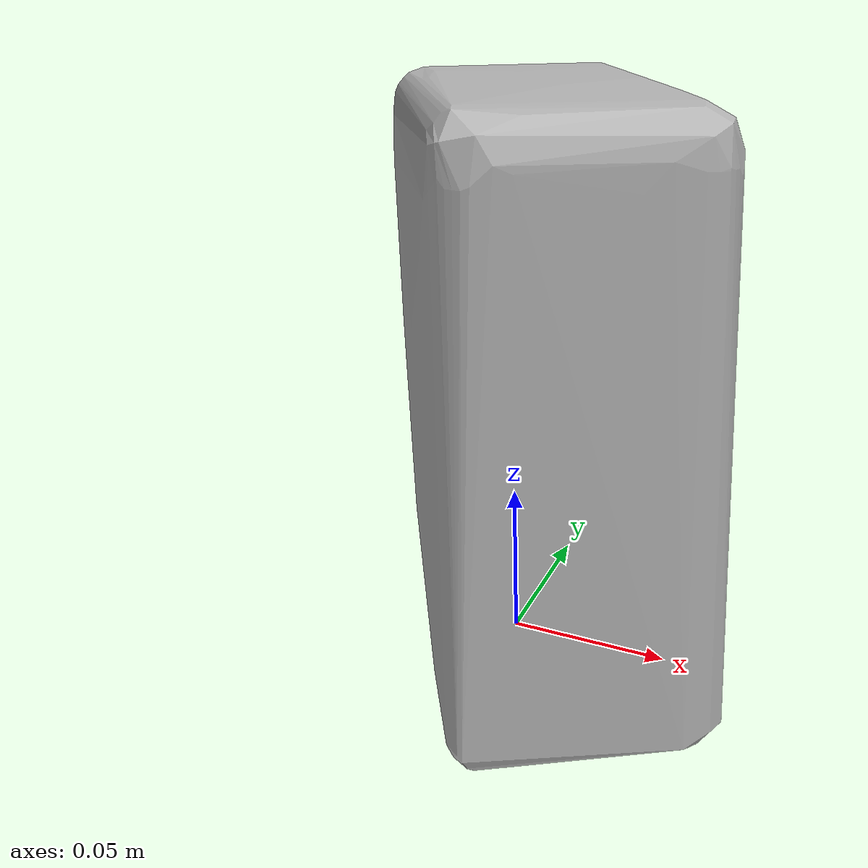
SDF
<?xml version='1.0'?>
<sdf version="1.4">
  <model name="fruit_by_the_foot">
    <static>false</static>
    <link name="link">
      <inertial>
        <pose>0.007419456748498663 0.003829795217206244 0.08757391247157834 3.13071320081857 0.008411008490499538 -2.566949917670076</pose>
        <mass>0.0845186349242316</mass>
        <inertia>
          <ixx>0.0006240123383081539</ixx>
          <ixy>-1.375682585800997e-19</ixy>
          <ixz>7.5582089689026265e-22</ixz>
          <iyy>0.00045208359053323867</iyy>
          <iyz>-7.333798166335557e-22</iyz>
          <izz>0.0003161338148172267</izz>
        </inertia>
      </inertial>
      <collision name="collision">
        <geometry>
          <mesh>
            <!-- Use a downsampled mesh for collisions -->
            <uri>model:///fruit_by_the_foot/fruit_by_the_foot_250_collision.obj</uri>
	        </mesh>
        </geometry>
        <surface>
      </surface>
      </collision>
      <visual name="visual">
        <geometry>
          <mesh>
            <uri>model:///fruit_by_the_foot/optimized_tsdf_texture_mapped_mesh.obj</uri>
	        </mesh>
        </geometry>
        <material>
          <script>
            <uri>model:///fruit_by_the_foot/fruit_by_the_foot.material</uri>
            <name>fruit_by_the_foot</name>
          </script>
        </material>
      </visual>
    </link>
  </model>
</sdf>
